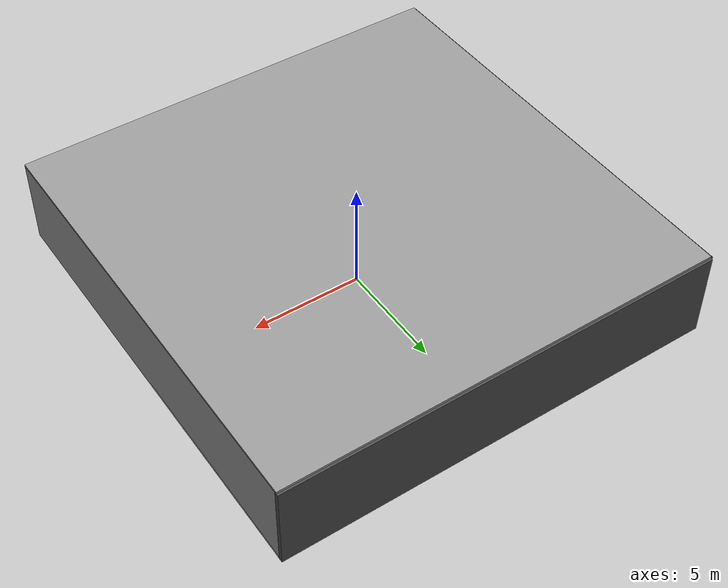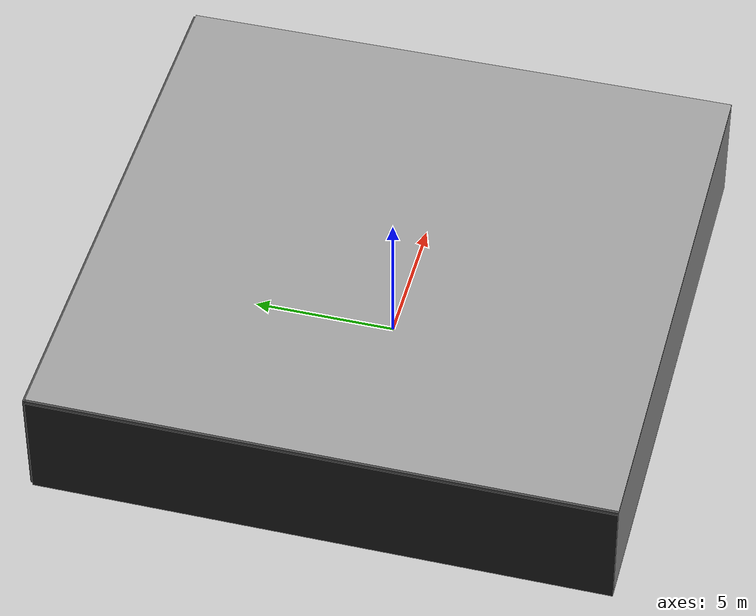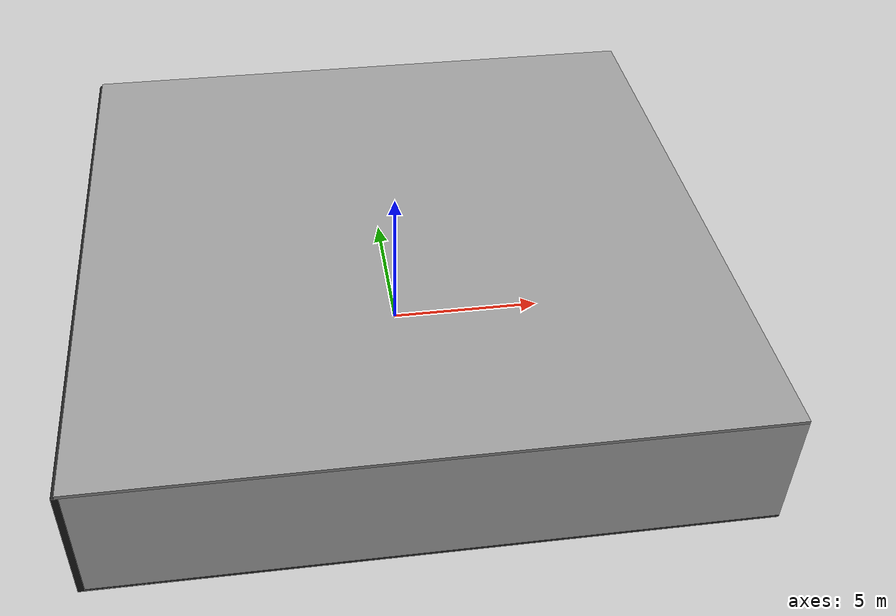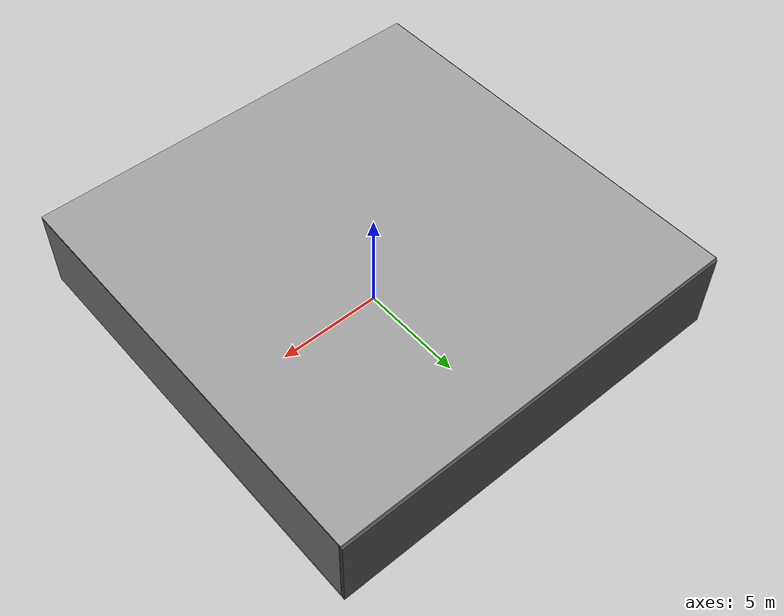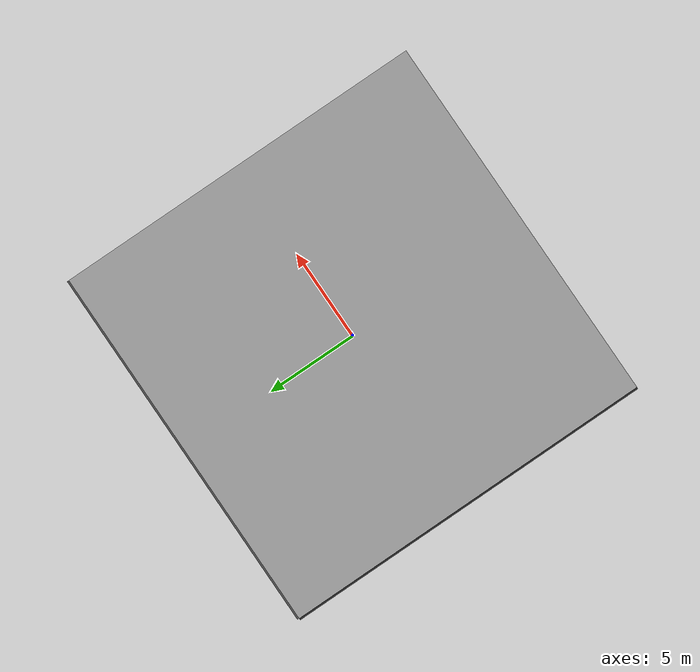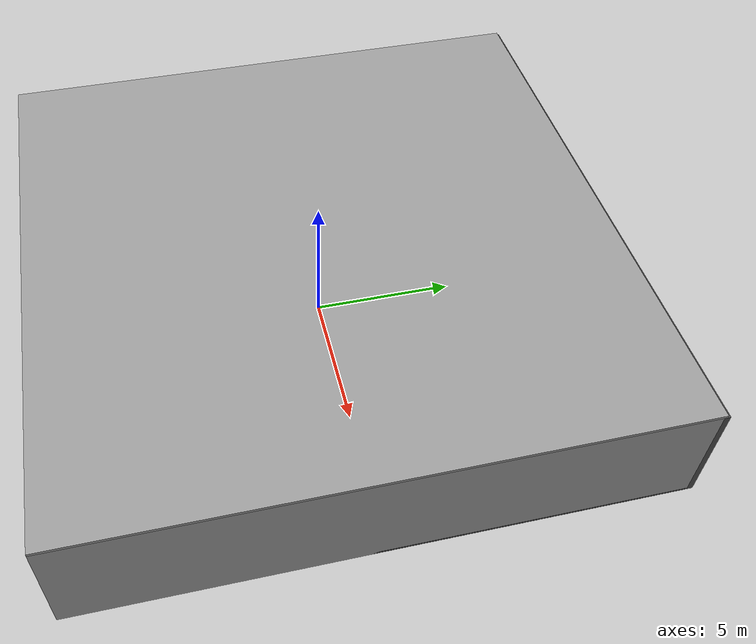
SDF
<sdf version="1.4">
 <world name="default">
  <physics type="ode">
   <max_step_size>0.001</max_step_size>
   <real_time_factor>1</real_time_factor>
   <real_time_update_rate>1000</real_time_update_rate>
   <gravity>0 0 -9.8</gravity>
  </physics>
  <scene><ambient>0.4 0.4 0.4 1</ambient><background>0.7 0.7 0.7 1</background><shadows>1</shadows></scene>
  <model name="Surrounding">
   <static>1</static>
   <link name="Ceiling">
    <collision name="Ceiling_Collision"><geometry><box><size>20 20 0.1</size></box></geometry></collision>
    <visual name="Ceiling_Visual">
     <geometry><box><size>20 20 0.1</size></box></geometry>
     <material>
      <script><uri>file://media/materials/scripts/gazebo.material</uri><name>Gazebo/GreyGradientSky</name></script>
     </material>
    </visual>
    <pose>0 0 4.05 0 0 0</pose>
   </link>
   <link name="Wall_South">
    <collision name="Wall_South_Collision">
     <geometry><box><size>20 0 4</size></box></geometry>
     <pose>0 0 2 0 -0 0</pose>
    </collision>
    <visual name="Wall_South_Visual">
     <pose>0 0 2 0 -0 0</pose>
     <geometry><box><size>20 0 4</size></box></geometry>
     <material>
      <script><uri>file://media/materials/scripts/gazebo.material</uri><name>Gazebo/CloudySky</name></script>
     </material>
    </visual>
    <velocity_decay><linear>0</linear><angular>0</angular></velocity_decay>
    <pose>0 -10 0 0 -0 0</pose>
   </link>
   <link name="Wall_East">
    <collision name="Wall_21_Collision">
     <geometry><box><size>20 0 4</size></box></geometry>
     <pose>0 0 2 0 -0 0</pose>
    </collision>
    <visual name="Wall_21_Visual">
     <pose>0 0 2 0 -0 0</pose>
     <geometry><box><size>20 0 4</size></box></geometry>
     <material>
      <script><uri>file://media/materials/scripts/gazebo.material</uri><name>Gazebo/Grey</name></script>
     </material>
    </visual>
    <velocity_decay><linear>0</linear><angular>0</angular></velocity_decay>
    <pose>10 0 0 0 -0 1.5708</pose>
   </link>
   <link name="Wall_North">
    <collision name="Wall_22_Collision">
     <geometry><box><size>20 0.2 4</size></box></geometry>
     <pose>0 0 2 0 -0 0</pose>
    </collision>
    <visual name="Wall_22_Visual">
     <pose>0 0 2 0 -0 0</pose>
     <geometry><box><size>20 0.2 4</size></box></geometry>
     <material>
      <script><uri>file://media/materials/scripts/gazebo.material</uri><name>Gazebo/DarkGrey</name></script>
     </material>
    </visual>
    <velocity_decay><linear>0</linear><angular>0</angular></velocity_decay>
    <pose>0 10 0 0 -0 0</pose>
   </link>
   <link name="Wall_West">
    <collision name="Wall_23_Collision">
     <geometry><box><size>20 0.2 4</size></box></geometry>
     <pose>0 0 2 0 -0 0</pose>
    </collision>
    <visual name="Wall_23_Visual">
     <pose>0 0 2 0 -0 0</pose>
     <geometry><box><size>20 0.2 4</size></box></geometry>
     <material>
      <script><uri>file://media/materials/scripts/gazebo.material</uri><name>Gazebo/Black</name></script>
     </material>
    </visual>
    <velocity_decay><linear>0</linear><angular>0</angular></velocity_decay>
    <pose>-10 0 0 0 0 -1.5708</pose>
   </link>
   <link name="Ground_link">
    <collision name="collision">
     <pose>0 0 .05 0 -0 0</pose>
     <geometry><box><size>20 20 0.1</size></box></geometry>
    </collision>
    <visual name="visual">
     <pose>0 0 .05 0 -0 0</pose>
     <geometry><box><size>20 20 0.1</size></box></geometry>
     <material>
      <script><uri>file://media/materials/scripts/gazebo.material</uri><name>Gazebo/FlatBlack</name></script>
     </material>
    </visual>
   </link>
   <static>1</static>
  </model>
  <spherical_coordinates>
   <surface_model>EARTH_WGS84</surface_model>
   <latitude_deg>0</latitude_deg>
   <longitude_deg>0</longitude_deg>
   <elevation>0</elevation>
   <heading_deg>0</heading_deg>
  </spherical_coordinates>
  <light name="lightball_0" type="diffuse">
   <diffuse>0.8 0.8 0.8 1</diffuse>
   <specular>0.2 0.2 0.2 1</specular>
   <attenuation>
    <range>100</range>
    <constant>0.7</constant>
    <linear>0.01</linear>
    <quadratic>0.001</quadratic>
   </attenuation>
   <direction>-0.5 0.1 -0.9</direction>
   <pose>0.654363585381 -3.85080380066 3.37249659857 0 0 0</pose>
  </light>
  <light name="lightball_1" type="diffuse">
   <diffuse>0.8 0.8 0.8 1</diffuse>
   <specular>0.2 0.2 0.2 1</specular>
   <attenuation>
    <range>100</range>
    <constant>0.7</constant>
    <linear>0.01</linear>
    <quadratic>0.001</quadratic>
   </attenuation>
   <direction>-0.5 0.1 -0.9</direction>
   <pose>-8.3681461912 3.32227251811 0.870180767064 0 0 0</pose>
  </light>
  <light name="lightball_2" type="diffuse">
   <diffuse>0.8 0.8 0.8 1</diffuse>
   <specular>0.2 0.2 0.2 1</specular>
   <attenuation>
    <range>100</range>
    <constant>0.7</constant>
    <linear>0.01</linear>
    <quadratic>0.001</quadratic>
   </attenuation>
   <direction>-0.5 0.1 -0.9</direction>
   <pose>2.33283455719 -8.24621643626 1.83210531522 0 0 0</pose>
  </light>
  <light name="lightball_3" type="diffuse">
   <diffuse>0.8 0.8 0.8 1</diffuse>
   <specular>0.2 0.2 0.2 1</specular>
   <attenuation>
    <range>100</range>
    <constant>0.7</constant>
    <linear>0.01</linear>
    <quadratic>0.001</quadratic>
   </attenuation>
   <direction>-0.5 0.1 -0.9</direction>
   <pose>2.56312428467 1.41454372886 3.33480073894 0 0 0</pose>
  </light>
  <include>
   <uri>model://robocup_3Dsim_goal</uri>
   <pose>-7.0156566356 -8.12023943778 0 0 0 0.240562232944</pose>
  </include>
  <include>
   <uri>model://robocup_3Dsim_goal</uri>
   <pose>1.22897239129 -0.441254239868 0 0 0 0.434118488134</pose>
  </include>
  <include><uri>model://cabinet</uri><pose>1.70773547209 2.59539407031 0 0 0 3.05642053397</pose></include>
  <include><uri>model://cabinet</uri><pose>2.29276725011 4.465121936 0 0 0 2.40528145658</pose></include>
  <include><uri>model://cabinet</uri><pose>5.38926088376 -5.09035173566 0 0 0 2.860287072</pose></include>
  <include>
   <uri>model://robocup_3Dsim_goal</uri>
   <pose>3.57955437013 3.82921591145 0 0 0 0.346603626061</pose>
  </include>
 </world>
</sdf>

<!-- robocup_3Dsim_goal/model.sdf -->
<sdf version="1.5">
  <model name="robocup_3d_goal">
    <static>true</static>
    <link name="left_post">
      <pose>0 1.05 0.45 0 0 0</pose>
      <collision name="collision">
        <geometry>
          <cylinder>
            <radius>0.05</radius>
            <length>0.9</length>
          </cylinder>
        </geometry>
      </collision>
      <visual name="visual">
        <geometry>
          <cylinder>
            <radius>0.05</radius>
            <length>0.9</length>
          </cylinder>
        </geometry>
        <material>
          <script>
            <uri>file://media/materials/scripts/gazebo.material</uri>
            <name>Gazebo/ZincYellow</name>
          </script>
        </material>
      </visual>
    </link>
    <link name="left_support_horiz_lower">
      <pose>0.30 1.05 0.01 0 0 0</pose>
      <collision name="collision">
        <geometry>
          <box>
            <size>0.50 0.02 0.02</size>
          </box>
        </geometry>
      </collision>
      <visual name="visual">
        <geometry>
          <box>
            <size>0.50 0.02 0.02</size>
          </box>
        </geometry>
        <material>
          <script>
            <uri>file://media/materials/scripts/gazebo.material</uri>
            <name>Gazebo/White</name>
          </script>
        </material>
      </visual>
    </link>
    <link name="left_support_horiz_upper">
      <pose>0.30 1.05 0.79 0 0 0</pose>
      <collision name="collision">
        <geometry>
          <box>
            <size>0.50 0.02 0.02</size>
          </box>
        </geometry>
      </collision>
      <visual name="visual">
        <geometry>
          <box>
            <size>0.50 0.02 0.02</size>
          </box>
        </geometry>
        <material>
          <script>
            <uri>file://media/materials/scripts/gazebo.material</uri>
            <name>Gazebo/White</name>
          </script>
        </material>
      </visual>
    </link>
    <link name="left_support_vertical">
      <pose>0.56 1.05 0.4 0 1.5708 0</pose>
      <collision name="collision">
        <geometry>
          <box>
            <size>0.80 0.02 0.02</size>
          </box>
        </geometry>
      </collision>
      <visual name="visual">
        <geometry>
          <box>
            <size>0.80 0.02 0.02</size>
          </box>
        </geometry>
        <material>
          <script>
            <uri>file://media/materials/scripts/gazebo.material</uri>
            <name>Gazebo/White</name>
          </script>
        </material>
      </visual>
    </link>
    <link name="right_support_horiz_lower">
      <pose>0.30 -1.05 0.01 0 0 0</pose>
      <collision name="collision">
        <geometry>
          <box>
            <size>0.50 0.02 0.02</size>
          </box>
        </geometry>
      </collision>
      <visual name="visual">
        <geometry>
          <box>
            <size>0.50 0.02 0.02</size>
          </box>
        </geometry>
        <material>
          <script>
            <uri>file://media/materials/scripts/gazebo.material</uri>
            <name>Gazebo/White</name>
          </script>
        </material>
      </visual>
    </link>
    <link name="right_support_horiz_upper">
      <pose>0.30 -1.05 0.79 0 0 0</pose>
      <collision name="collision">
        <geometry>
          <box>
            <size>0.50 0.02 0.02</size>
          </box>
        </geometry>
      </collision>
      <visual name="visual">
        <geometry>
          <box>
            <size>0.50 0.02 0.02</size>
          </box>
        </geometry>
        <material>
          <script>
            <uri>file://media/materials/scripts/gazebo.material</uri>
            <name>Gazebo/White</name>
          </script>
        </material>
      </visual>
    </link>
    <link name="right_support_vertical">
      <pose>0.56 -1.05 0.4 0 1.5708 0</pose>
      <collision name="collision">
        <geometry>
          <box>
            <size>0.80 0.02 0.02</size>
          </box>
        </geometry>
      </collision>
      <visual name="visual">
        <geometry>
          <box>
            <size>0.80 0.02 0.02</size>
          </box>
        </geometry>
        <material>
          <script>
            <uri>file://media/materials/scripts/gazebo.material</uri>
            <name>Gazebo/White</name>
          </script>
        </material>
      </visual>
    </link>
    <link name="center_support_horiz_lower">
      <pose>0.56 0 0.01 0 1.5708 0</pose>
      <collision name="collision">
        <geometry>
          <box>
            <size>0.02 2.08 0.02</size>
          </box>
        </geometry>
      </collision>
      <visual name="visual">
        <geometry>
          <box>
            <size>0.02 2.08 0.02</size>
          </box>
        </geometry>
        <material>
          <script>
            <uri>file://media/materials/scripts/gazebo.material</uri>
            <name>Gazebo/White</name>
          </script>
        </material>
      </visual>
    </link>
    <link name="center_support_horiz_upper">
      <pose>0.56 0 0.79 0 1.5708 0</pose>
      <collision name="collision">
        <geometry>
          <box>
            <size>0.02 2.08 0.02</size>
          </box>
        </geometry>
      </collision>
      <visual name="visual">
        <geometry>
          <box>
            <size>0.02 2.08 0.02</size>
          </box>
        </geometry>
        <material>
          <script>
            <uri>file://media/materials/scripts/gazebo.material</uri>
            <name>Gazebo/White</name>
          </script>
        </material>
      </visual>
    </link>
    <link name="right_post">
      <pose>0 -1.05 0.45 0 0 0</pose>
      <collision name="collision">
        <geometry>
          <cylinder>
            <radius>0.05</radius>
            <length>0.9</length>
          </cylinder>
        </geometry>
      </collision>
      <visual name="visual">
        <geometry>
          <cylinder>
            <radius>0.05</radius>
            <length>0.9</length>
          </cylinder>
        </geometry>
        <material>
          <script>
            <uri>file://media/materials/scripts/gazebo.material</uri>
            <name>Gazebo/ZincYellow</name>
          </script>
        </material>
      </visual>
    </link>
    <link name="crossbar">
      <pose>0 0 0.85 1.57 1.57 0</pose>
      <collision name="collision">
        <geometry>
          <cylinder>
            <radius>0.05</radius>
            <length>2.0</length>
          </cylinder>
        </geometry>
      </collision>
      <visual name="visual">
        <geometry>
          <cylinder>
            <radius>0.05</radius>
            <length>2.0</length>
          </cylinder>
        </geometry>
        <material>
          <script>
            <uri>file://media/materials/scripts/gazebo.material</uri>
            <name>Gazebo/ZincYellow</name>
          </script>
        </material>
      </visual>
    </link>
    <link name="center_net">
      <pose>0.56 0 0.40 0 0 0</pose>
      <collision name="collision">
        <geometry>
          <box>
            <size>0.01 2.1 0.80</size>
          </box>
        </geometry>
      </collision>
      <visual name="visual">
        <geometry>
          <box>
            <size>0.01 2.1 0.80</size>
          </box>
        </geometry>
        <material>
          <script>
            <uri>model://../model_source/models/robocup09_spl_field/materials/scripts/</uri>
            <uri>model://../model_source/models/robocup09_spl_field/materials/textures/</uri>
            <name>RoboCup/Net</name>
          </script>
        </material>
      </visual>
    </link>
    <link name="left_net">
      <pose>0.30 1.05 0.40 0 0 0</pose>
      <collision name="collision">
        <geometry>
          <box>
            <size>0.50 0.01 0.76</size>
          </box>
        </geometry>
      </collision>
      <visual name="visual">
        <geometry>
          <box>
            <size>0.50 0.01 0.76</size>
          </box>
        </geometry>
        <material>
          <script>
            <uri>model://../model_source/models/robocup09_spl_field/materials/scripts/</uri>
            <uri>model://../model_source/models/robocup09_spl_field/materials/textures/</uri>
            <name>RoboCup/Net</name>
          </script>
        </material>
      </visual>
    </link>
    <link name="right_net">
      <pose>0.30 -1.05 0.40 0 0 0</pose>
      <collision name="collision">
        <geometry>
          <box>
            <size>0.50 0.01 0.76</size>
          </box>
        </geometry>
      </collision>
      <visual name="visual">
        <geometry>
          <box>
            <size>0.50 0.01 0.76</size>
          </box>
        </geometry>
        <material>
          <script>
            <uri>model://../model_source/models/robocup09_spl_field/materials/scripts/</uri>
            <uri>model://../model_source/models/robocup09_spl_field/materials/textures/</uri>
            <name>RoboCup/Net</name>
          </script>
        </material>
      </visual>
    </link>
  </model>
</sdf>

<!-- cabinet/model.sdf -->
<sdf version="1.5">
  <model name="cabinet">
    <static>true</static>
    <link name="cabinet_bottom_plate">
      <inertial>
        <pose>0 0 -1 0 0 0</pose>
        <inertia>
          <ixx>2.050000</ixx>
          <ixy>0</ixy>
          <ixz>0</ixz>
          <iyy>2.050000</iyy>
          <iyz>0</iyz>
          <izz>2.050000</izz>
        </inertia>
        <mass>25.000000</mass>
      </inertial>
      <collision name="cabinet_bottom_plate_geom">
        <pose>0 0 0.010000 0 0 0</pose>
        <geometry>
          <box>
            <size>0.450000 0.450000 0.020000</size>
          </box>
        </geometry>
      </collision>
      <visual name="cabinet_bottom_plate_geom_visual">
        <pose>0 0 0.010000 0 0 0</pose>
        <geometry>
          <box>
            <size>0.450000 0.450000 0.020000</size>
          </box>
        </geometry>
        <material>
          <script>
            <uri>model://media/materials/scripts/gazebo.material</uri>
            <name>Gazebo/Wood</name>
          </script>
        </material>
      </visual>
      <collision name="cabinet_bottom_plate_geom_cabinet_back_plate">
        <pose>0.235000 0 0.510000 0 0 0</pose>
        <geometry>
          <box>
            <size>0.020000 0.450000 1.020000</size>
          </box>
        </geometry>
      </collision>
      <visual name="cabinet_bottom_plate_geom_cabinet_back_plate_visual">
        <pose>0.235000 0 0.510000 0 0 0</pose>
        <geometry>
          <box>
            <size>0.020000 0.450000 1.020000</size>
          </box>
        </geometry>
        <material>
          <script>
            <uri>model://media/materials/scripts/gazebo.material</uri>
            <name>Gazebo/Wood</name>
          </script>
        </material>
      </visual>
      <collision name="cabinet_bottom_plate_geom_cabinet_left_plate">
        <pose>0 0.235000 0.510000 0 0 0</pose>
        <geometry>
          <box>
            <size>0.450000 0.020000 1.020000</size>
          </box>
        </geometry>
      </collision>
      <visual name="cabinet_bottom_plate_geom_cabinet_left_plate_visual">
        <pose>0 0.235000 0.510000 0 0 0</pose>
        <geometry>
          <box>
            <size>0.450000 0.020000 1.020000</size>
          </box>
        </geometry>
        <material>
          <script>
            <uri>model://media/materials/scripts/gazebo.material</uri>
            <name>Gazebo/Wood</name>
          </script>
        </material>
      </visual>
      <collision name="cabinet_bottom_plate_geom_cabinet_middle_plate">
        <pose>0 0 0.510000 0 0 0</pose>
        <geometry>
          <box>
            <size>0.450000 0.450000 0.020000</size>
          </box>
        </geometry>
      </collision>
      <visual name="cabinet_bottom_plate_geom_cabinet_middle_plate_visual">
        <pose>0 0 0.510000 0 0 0</pose>
        <geometry>
          <box>
            <size>0.450000 0.450000 0.020000</size>
          </box>
        </geometry>
        <material>
          <script>
            <uri>model://media/materials/scripts/gazebo.material</uri>
            <name>Gazebo/Wood</name>
          </script>
        </material>
      </visual>
      <collision name="cabinet_bottom_plate_geom_cabinet_right_plate">
        <pose>0 -0.235000 0.510000 0 0 0</pose>
        <geometry>
          <box>
            <size>0.450000 0.020000 1.020000</size>
          </box>
        </geometry>
      </collision>
      <visual name="cabinet_bottom_plate_geom_cabinet_right_plate_visual">
        <pose>0 -0.235000 0.510000 0 0 0</pose>
        <geometry>
          <box>
            <size>0.450000 0.020000 1.020000</size>
          </box>
        </geometry>
        <material>
          <script>
            <uri>model://media/materials/scripts/gazebo.material</uri>
            <name>Gazebo/Wood</name>
          </script>
        </material>
      </visual>
      <collision name="cabinet_bottom_plate_geom_cabinet_top_plate">
        <pose>0 0 1.010000 0 0 0</pose>
        <geometry>
          <box>
            <size>0.450000 0.450000 0.020000</size>
          </box>
        </geometry>
      </collision>
      <visual name="cabinet_bottom_plate_geom_cabinet_top_plate_visual">
        <pose>0 0 1.010000 0 0 0</pose>
        <geometry>
          <box>
            <size>0.450000 0.450000 0.020000</size>
          </box>
        </geometry>
        <material>
          <script>
            <uri>model://media/materials/scripts/gazebo.material</uri>
            <name>Gazebo/Wood</name>
          </script>
        </material>
      </visual>
    </link>
  </model>
</sdf>
